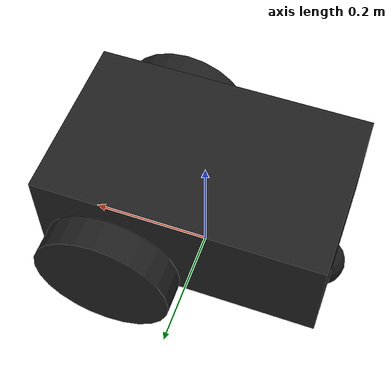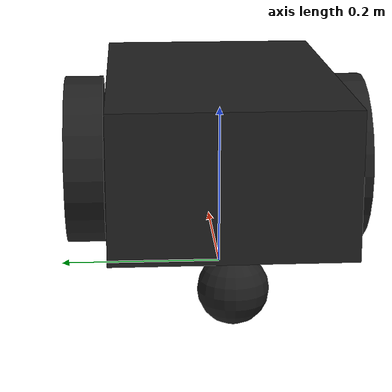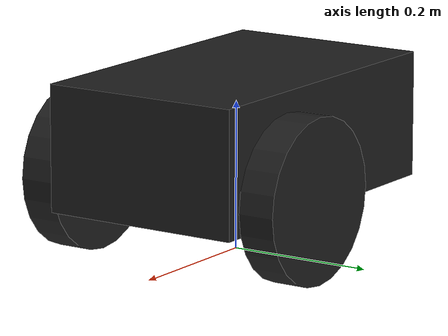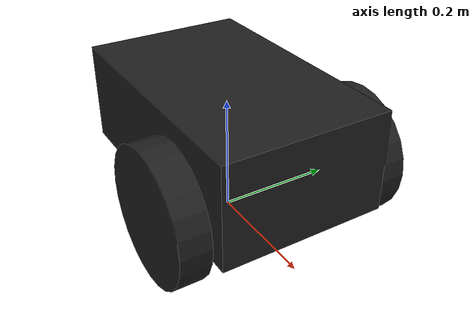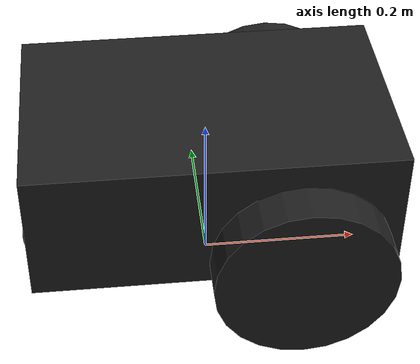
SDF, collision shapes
<?xml version='1.0'?>
<sdf version='1.6'>
  <model name='pioneer2dx'>
    <link name='chassis'>
      <pose frame=''>-0 -0 0.16 0 -0 0</pose>
      <inertial>
        <mass>5.67</mass>
        <inertia>
          <ixx>0.07</ixx>
          <iyy>0.08</iyy>
          <izz>0.1</izz>
          <ixy>0</ixy>
          <ixz>0</ixz>
          <iyz>0</iyz>
        </inertia>
      </inertial>
      <self_collide>0</self_collide>
      <enable_wind>0</enable_wind>
      <kinematic>0</kinematic>
      <visual name='visual'>
        <pose frame=''>0 0 0.04 0 -0 0</pose>
        <geometry>
          <mesh>
            <uri>model://pioneer2dx/meshes/chassis.dae</uri>
          </mesh>
        </geometry>
        <transparency>0</transparency>
        <cast_shadows>1</cast_shadows>
      </visual>
      <visual name='castor_visual'>
        <pose frame=''>-0.2 0 -0.12 0 -0 0</pose>
        <geometry>
          <sphere>
            <radius>0.04</radius>
          </sphere>
        </geometry>
        <material>
          <script>
            <uri>file://media/materials/scripts/gazebo.material</uri>
            <name>Gazebo/FlatBlack</name>
          </script>
        </material>
        <transparency>0</transparency>
        <cast_shadows>1</cast_shadows>
      </visual>
      <collision name='collision'>
        <laser_retro>0</laser_retro>
        <max_contacts>10</max_contacts>
        <pose frame=''>0 0 0 0 -0 0</pose>
        <geometry>
          <box>
            <size>0.445 0.277 0.17</size>
          </box>
        </geometry>
        <surface>
          <friction>
            <ode>
              <mu>1</mu>
              <mu2>1</mu2>
              <fdir1>0 0 0</fdir1>
              <slip1>0</slip1>
              <slip2>0</slip2>
            </ode>
            <torsional>
              <coefficient>1</coefficient>
              <patch_radius>0</patch_radius>
              <surface_radius>0</surface_radius>
              <use_patch_radius>1</use_patch_radius>
              <ode>
                <slip>0</slip>
              </ode>
            </torsional>
          </friction>
          <bounce>
            <restitution_coefficient>0</restitution_coefficient>
            <threshold>1e+06</threshold>
          </bounce>
          <contact>
            <collide_without_contact>0</collide_without_contact>
            <collide_without_contact_bitmask>1</collide_without_contact_bitmask>
            <collide_bitmask>1</collide_bitmask>
            <ode>
              <soft_cfm>0</soft_cfm>
              <soft_erp>0.2</soft_erp>
              <kp>1e+13</kp>
              <kd>1</kd>
              <max_vel>0.01</max_vel>
              <min_depth>0</min_depth>
            </ode>
            <bullet>
              <split_impulse>1</split_impulse>
              <split_impulse_penetration_threshold>-0.01</split_impulse_penetration_threshold>
              <soft_cfm>0</soft_cfm>
              <soft_erp>0.2</soft_erp>
              <kp>1e+13</kp>
              <kd>1</kd>
            </bullet>
          </contact>
        </surface>
      </collision>
      <collision name='castor_collision'>
        <laser_retro>0</laser_retro>
        <max_contacts>10</max_contacts>
        <pose frame=''>-0.2 0 -0.12 0 -0 0</pose>
        <geometry>
          <sphere>
            <radius>0.04</radius>
          </sphere>
        </geometry>
        <surface>
          <friction>
            <ode>
              <mu>0</mu>
              <mu2>0</mu2>
              <fdir1>0 0 0</fdir1>
              <slip1>1</slip1>
              <slip2>1</slip2>
            </ode>
            <torsional>
              <coefficient>1</coefficient>
              <patch_radius>0</patch_radius>
              <surface_radius>0</surface_radius>
              <use_patch_radius>1</use_patch_radius>
              <ode>
                <slip>0</slip>
              </ode>
            </torsional>
          </friction>
          <bounce>
            <restitution_coefficient>0</restitution_coefficient>
            <threshold>1e+06</threshold>
          </bounce>
          <contact>
            <collide_without_contact>0</collide_without_contact>
            <collide_without_contact_bitmask>1</collide_without_contact_bitmask>
            <collide_bitmask>1</collide_bitmask>
            <ode>
              <soft_cfm>0</soft_cfm>
              <soft_erp>0.2</soft_erp>
              <kp>1e+13</kp>
              <kd>1</kd>
              <max_vel>0.01</max_vel>
              <min_depth>0</min_depth>
            </ode>
            <bullet>
              <split_impulse>1</split_impulse>
              <split_impulse_penetration_threshold>-0.01</split_impulse_penetration_threshold>
              <soft_cfm>0</soft_cfm>
              <soft_erp>0.2</soft_erp>
              <kp>1e+13</kp>
              <kd>1</kd>
            </bullet>
          </contact>
        </surface>
      </collision>
    </link>
    <link name='left_wheel'>
      <pose frame=''>0.1 0.17 0.11 -0.000625 1.5707 1.57008</pose>
      <inertial>
        <mass>1.5</mass>
        <inertia>
          <ixx>0.0051</ixx>
          <iyy>0.0051</iyy>
          <izz>0.009</izz>
          <ixy>0</ixy>
          <ixz>0</ixz>
          <iyz>0</iyz>
        </inertia>
      </inertial>
      <self_collide>0</self_collide>
      <enable_wind>0</enable_wind>
      <kinematic>0</kinematic>
      <visual name='visual'>
        <geometry>
          <cylinder>
            <radius>0.11</radius>
            <length>0.05</length>
          </cylinder>
        </geometry>
        <material>
          <script>
            <uri>file://media/materials/scripts/gazebo.material</uri>
            <name>Gazebo/FlatBlack</name>
          </script>
        </material>
        <pose frame=''>0 0 0 0 -0 0</pose>
        <transparency>0</transparency>
        <cast_shadows>1</cast_shadows>
      </visual>
      <collision name='collision'>
        <laser_retro>0</laser_retro>
        <max_contacts>10</max_contacts>
        <pose frame=''>0 0 0 0 -0 0</pose>
        <geometry>
          <cylinder>
            <radius>0.11</radius>
            <length>0.05</length>
          </cylinder>
        </geometry>
        <surface>
          <friction>
            <ode>
              <mu>100000</mu>
              <mu2>100000</mu2>
              <fdir1>0 0 0</fdir1>
              <slip1>0</slip1>
              <slip2>0</slip2>
            </ode>
            <torsional>
              <coefficient>1</coefficient>
              <patch_radius>0</patch_radius>
              <surface_radius>0</surface_radius>
              <use_patch_radius>1</use_patch_radius>
              <ode>
                <slip>0</slip>
              </ode>
            </torsional>
          </friction>
          <bounce>
            <restitution_coefficient>0</restitution_coefficient>
            <threshold>1e+06</threshold>
          </bounce>
          <contact>
            <collide_without_contact>0</collide_without_contact>
            <collide_without_contact_bitmask>1</collide_without_contact_bitmask>
            <collide_bitmask>1</collide_bitmask>
            <ode>
              <soft_cfm>0</soft_cfm>
              <soft_erp>0.2</soft_erp>
              <kp>1e+13</kp>
              <kd>1</kd>
              <max_vel>0.01</max_vel>
              <min_depth>0</min_depth>
            </ode>
            <bullet>
              <split_impulse>1</split_impulse>
              <split_impulse_penetration_threshold>-0.01</split_impulse_penetration_threshold>
              <soft_cfm>0</soft_cfm>
              <soft_erp>0.2</soft_erp>
              <kp>1e+13</kp>
              <kd>1</kd>
            </bullet>
          </contact>
        </surface>
      </collision>
    </link>
    <link name='right_wheel'>
      <pose frame=''>0.1 -0.17 0.11 -0.000625 1.5707 1.57008</pose>
      <inertial>
        <mass>1.5</mass>
        <inertia>
          <ixx>0.0051</ixx>
          <iyy>0.0051</iyy>
          <izz>0.009</izz>
          <ixy>0</ixy>
          <ixz>0</ixz>
          <iyz>0</iyz>
        </inertia>
      </inertial>
      <self_collide>0</self_collide>
      <enable_wind>0</enable_wind>
      <kinematic>0</kinematic>
      <visual name='visual'>
        <geometry>
          <cylinder>
            <radius>0.11</radius>
            <length>0.05</length>
          </cylinder>
        </geometry>
        <material>
          <script>
            <uri>file://media/materials/scripts/gazebo.material</uri>
            <name>Gazebo/FlatBlack</name>
          </script>
        </material>
        <pose frame=''>0 0 0 0 -0 0</pose>
        <transparency>0</transparency>
        <cast_shadows>1</cast_shadows>
      </visual>
      <collision name='collision'>
        <laser_retro>0</laser_retro>
        <max_contacts>10</max_contacts>
        <pose frame=''>0 0 0 0 -0 0</pose>
        <geometry>
          <cylinder>
            <radius>0.11</radius>
            <length>0.05</length>
          </cylinder>
        </geometry>
        <surface>
          <friction>
            <ode>
              <mu>100000</mu>
              <mu2>100000</mu2>
              <fdir1>0 0 0</fdir1>
              <slip1>0</slip1>
              <slip2>0</slip2>
            </ode>
            <torsional>
              <coefficient>1</coefficient>
              <patch_radius>0</patch_radius>
              <surface_radius>0</surface_radius>
              <use_patch_radius>1</use_patch_radius>
              <ode>
                <slip>0</slip>
              </ode>
            </torsional>
          </friction>
          <bounce>
            <restitution_coefficient>0</restitution_coefficient>
            <threshold>1e+06</threshold>
          </bounce>
          <contact>
            <collide_without_contact>0</collide_without_contact>
            <collide_without_contact_bitmask>1</collide_without_contact_bitmask>
            <collide_bitmask>1</collide_bitmask>
            <ode>
              <soft_cfm>0</soft_cfm>
              <soft_erp>0.2</soft_erp>
              <kp>1e+13</kp>
              <kd>1</kd>
              <max_vel>0.01</max_vel>
              <min_depth>0</min_depth>
            </ode>
            <bullet>
              <split_impulse>1</split_impulse>
              <split_impulse_penetration_threshold>-0.01</split_impulse_penetration_threshold>
              <soft_cfm>0</soft_cfm>
              <soft_erp>0.2</soft_erp>
              <kp>1e+13</kp>
              <kd>1</kd>
            </bullet>
          </contact>
        </surface>
      </collision>
    </link>
    <joint name='left_wheel_hinge' type='revolute'>
      <parent>chassis</parent>
      <child>left_wheel</child>
      <pose frame=''>0 0 -0.03 0 -0 0</pose>
      <axis>
        <xyz>0 1 0</xyz>
        <use_parent_model_frame>1</use_parent_model_frame>
        <limit>
          <lower>-1e+16</lower>
          <upper>1e+16</upper>
          <effort>-1</effort>
          <velocity>-1</velocity>
        </limit>
        <dynamics>
          <spring_reference>0</spring_reference>
          <spring_stiffness>0</spring_stiffness>
          <damping>0</damping>
          <friction>0</friction>
        </dynamics>
      </axis>
      <physics>
        <ode>
          <limit>
            <cfm>0</cfm>
            <erp>0.2</erp>
          </limit>
          <suspension>
            <cfm>0</cfm>
            <erp>0.2</erp>
          </suspension>
        </ode>
      </physics>
    </joint>
    <joint name='right_wheel_hinge' type='revolute'>
      <parent>chassis</parent>
      <child>right_wheel</child>
      <pose frame=''>0 0 0.03 0 -0 0</pose>
      <axis>
        <xyz>0 1 0</xyz>
        <use_parent_model_frame>1</use_parent_model_frame>
        <limit>
          <lower>-1e+16</lower>
          <upper>1e+16</upper>
          <effort>-1</effort>
          <velocity>-1</velocity>
        </limit>
        <dynamics>
          <spring_reference>0</spring_reference>
          <spring_stiffness>0</spring_stiffness>
          <damping>0</damping>
          <friction>0</friction>
        </dynamics>
      </axis>
      <physics>
        <ode>
          <limit>
            <cfm>0</cfm>
            <erp>0.2</erp>
          </limit>
          <suspension>
            <cfm>0</cfm>
            <erp>0.2</erp>
          </suspension>
        </ode>
      </physics>
    </joint>
    <static>0</static>
    <allow_auto_disable>1</allow_auto_disable>

<plugin filename="libgazebo_ros_diff_drive.so" name="differential_drive_controller_front">
      <rosDebugLevel>Debug</rosDebugLevel>
      <publishWheelTF>True</publishWheelTF>
      <publishTf>1</publishTf>
      <publishWheelJointState>true</publishWheelJointState>
      <alwaysOn>true</alwaysOn>
      <updateRate>50.0</updateRate>
      <leftJoint>left_wheel_hinge</leftJoint>
      <rightJoint>right_wheel_hinge</rightJoint>
      <wheelSeparation>0.2</wheelSeparation>
      <wheelDiameter>0.22</wheelDiameter>
      <broadcastTF>1</broadcastTF>
      <wheelTorque>20</wheelTorque>
      <wheelAcceleration>1.8</wheelAcceleration>
      <commandTopic>cmd_vel</commandTopic>
      <publishOdomTF>0</publishOdomTF>  <!-- DID THIS FOR LOCALIZATION TRIAL -->
      <odometryFrame>odom</odometryFrame>
      <odometryTopic>odom</odometryTopic>
      <robotNamespace>husky</robotNamespace>
</plugin>

<plugin name="imu_plugin" filename="libgazebo_ros_imu.so">
      <alwaysOn>true</alwaysOn>
      <bodyName>chassis</bodyName>
      <topicName>imu</topicName>
      <serviceName>imu_service</serviceName>
      <gaussianNoise>0.0</gaussianNoise>
      <updateRate>20.0</updateRate>
</plugin>

  </model>
</sdf>
